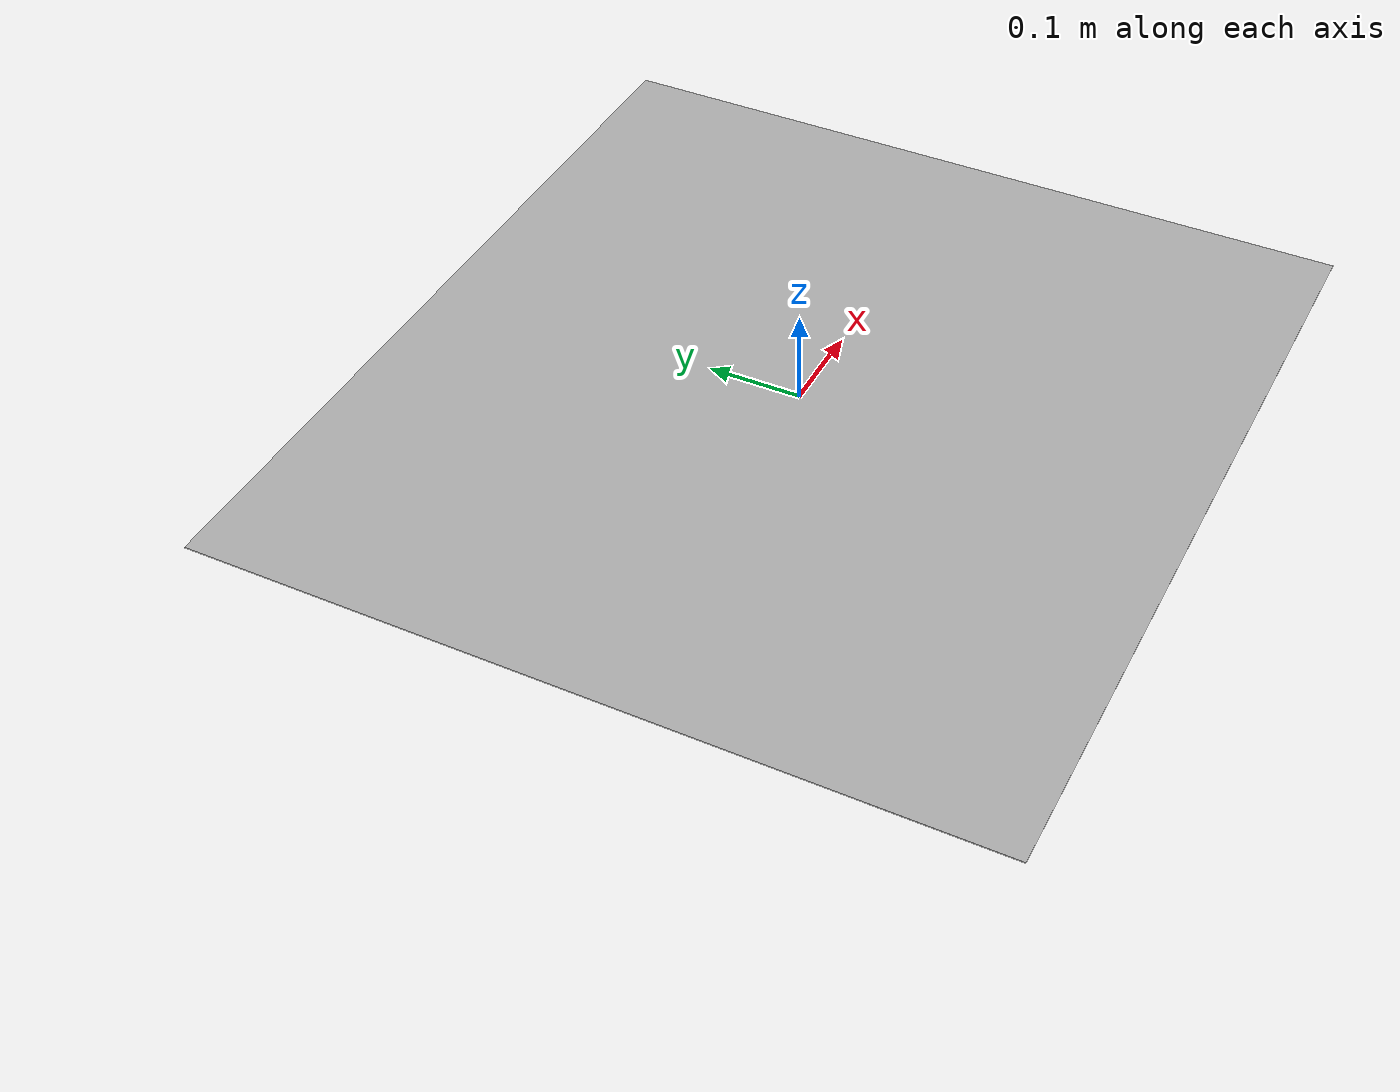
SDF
<?xml version="1.0"?>
<sdf version="1.6">
    <model name="calib_plane">
        <static>true</static>
        <link name="link">
            <collision name="collision">
                <geometry>
                    <plane>
                        <normal>0 0 1</normal>
                        <size>0.891 0.841</size>
                    </plane>
                </geometry>
                <surface>
                    <friction>
                        <ode>
                            <mu>100</mu>
                            <mu2>50</mu2>
                        </ode>
                    </friction>
                </surface>
            </collision>

            <visual name="visual">
                <cast_shadows>false</cast_shadows>
                <geometry>
                    <plane>
                        <normal>0 0 1</normal>
                        <size>0.891 0.841</size>
                    </plane>
                </geometry>
                <material>
                    <script>
                        <uri>model://calib_plane/materials/scripts/</uri>
                        <uri>model://calib_plane/materials/textures</uri>
                        <name>CalibPlane/Image</name>
                    </script>
                </material>
            </visual>
        </link>
    </model>
</sdf>
